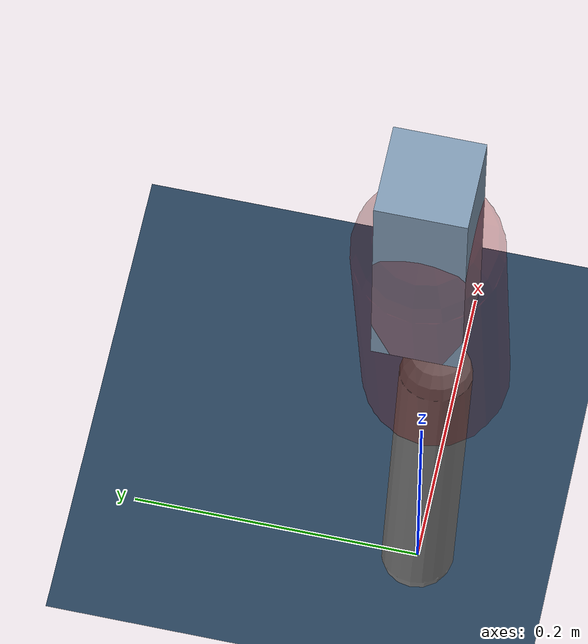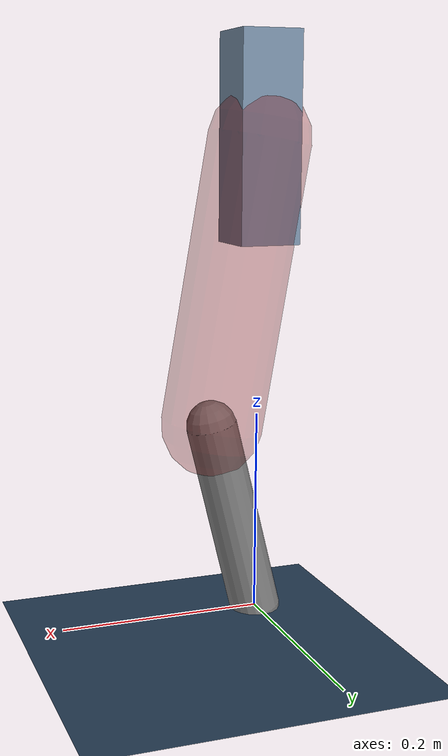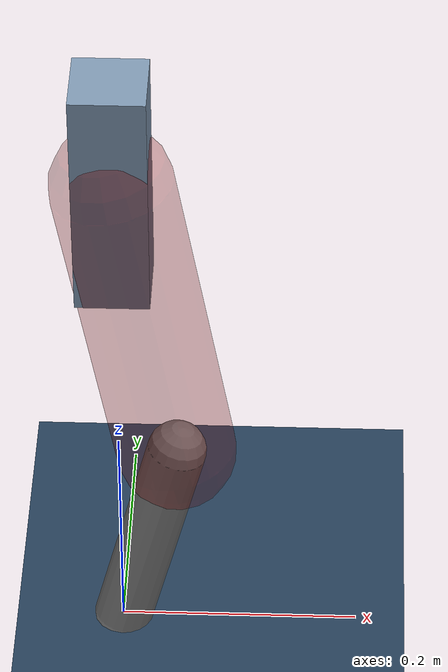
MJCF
<mujoco model="Hopper2D">
	<compiler inertiafromgeom="true" angle="radian" />
	<option timestep="0.001" integrator="implicit" cone="elliptic" solver="Newton" tolerance="1e-10" />

	<default>
		<geom contype="1" conaffinity="1" condim="3" friction="2 0.005 0.0001" solref="0.005 1" />
		<joint limited="true" damping="0.1" />
	</default>

	<asset>
		<texture name="skybox" type="skybox" builtin="gradient" rgb1=".4 .6 .8" rgb2="0 0 0" width="800" height="800" />
		<texture name="grid" type="2d" builtin="checker" rgb1=".1 .2 .3" rgb2=".2 .3 .4" width="300" height="300" mark="edge" markrgb=".2 .3 .4" />
		<material name="ground" texture="grid" texrepeat="1 1" texuniform="true" reflectance="0.1" />
		<material name="leg" rgba="0.5 0.6 0.7 1" />
	</asset>

	<worldbody>

		<geom name="floor" type="plane" size="5 5 0.25" material="ground" />

		<light directional="false" diffuse="0.8 0.8 0.8" specular="0.3 0.3 0.3" pos="0 0 2" dir="0 0 -1" />
		<light mode="targetbodycom" target="base" directional="false" diffuse="0.8 0.8 0.8" specular="0.3 0.3 0.3" pos="0 0 2" dir="0 0 -1" />

		<camera name="fixed" pos="0 -2 1" xyaxes="1 0 0 0 0 1" />
		<camera name="tracking" mode="trackcom" pos="0 -3 1" />

		<body name="root" pos="0 0 0.46986218726213314">
			<joint name="slide_x" type="slide" axis="1 0 0" range="-100 100" />
			<joint name="slide_z" type="slide" axis="0 0 1" range="0 10" />

			<body name="base" pos="0 0 0">
				<geom name="torso" type="box" size="0.03 0.03 0.1" mass="2.086" material="leg" />

				<body name="link1" pos="0 0 0" euler="0 1.399762070032637 0">
					<joint type="hinge" axis="0 -1 0" pos="0 0 0" name="hinge1" limited="true" range="-3.14 3.14" stiffness="0" damping="0.1" />
					<geom name="thigh" type="capsule" fromto="0 0 0 0.28172308827513015 0 0" size="0.05" rgba="0.5 0 0 0.3" mass="0.9396800295153385" />

					<body name="link2" pos="0.28172308827513015 0 0" euler="0 0.41546116117077325 0">
						<joint type="hinge" axis="0 -1 0" pos="0 0 0" name="hinge2" limited="true" range="-3.14 3.14" stiffness="0" damping="0.1" />
						<geom name="shank" type="capsule" fromto="0 0 0 0.19813909898700302 0 0" size="0.025" mass="0.3993251890883027" />

					</body>
				</body>
			</body>
		</body>
	</worldbody>

	<actuator>
		<motor name="torque1" joint="hinge1" ctrlrange="-48.51523469711391 48.51523469711391" ctrllimited="true" gear="1" />
		<motor name="torque2" joint="hinge2" ctrlrange="-31.99455903674594 31.99455903674594" ctrllimited="true" gear="1" />
	</actuator>
</mujoco>
